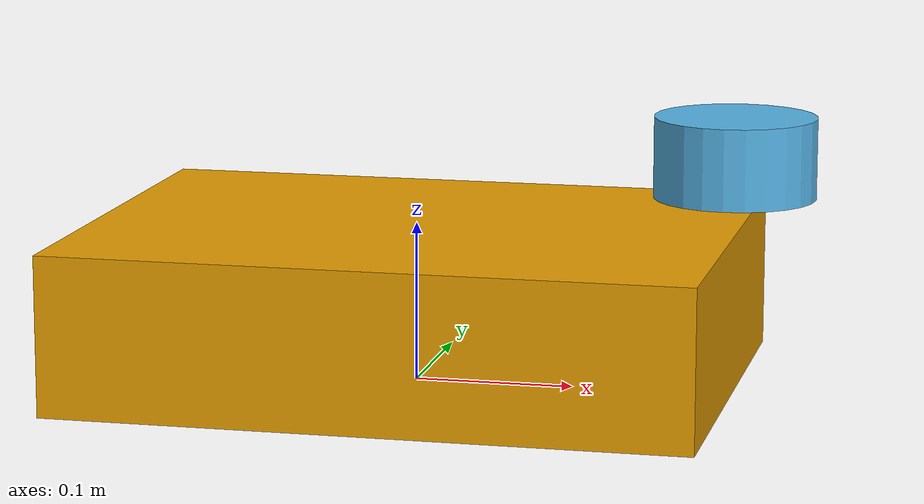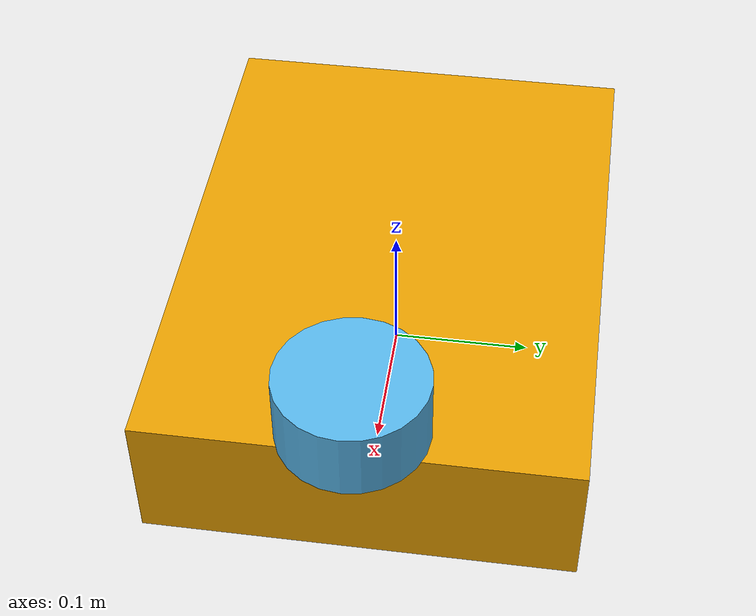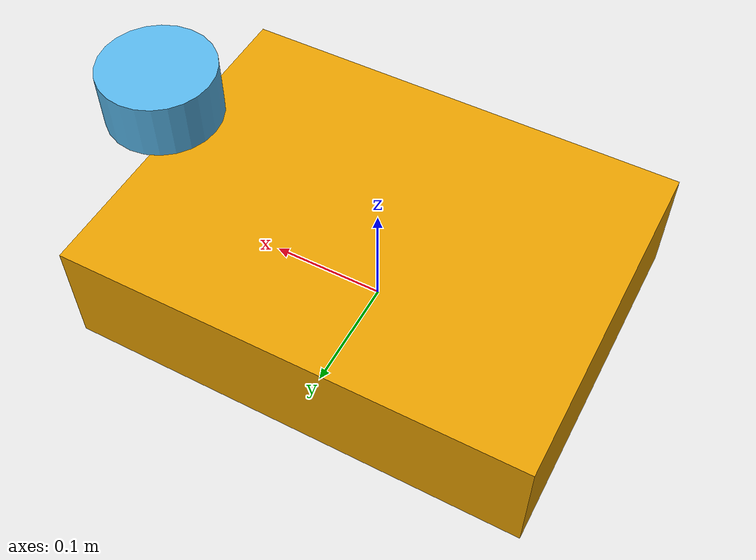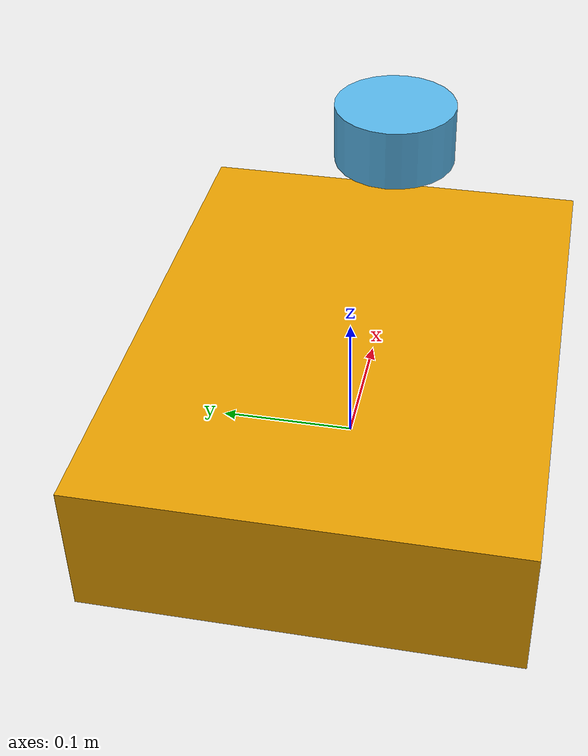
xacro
<?xml version="1.0"?>
<robot name="mercury" xmlns:xacro="http://www.ros.org/wiki/xacro">

  <!-- ================= BASE ================= -->
  <link name="base_link">
    <visual>
      <geometry>
        <box size="0.4 0.3 0.1"/>
      </geometry>
      <origin xyz="0 0 0.05"/>
    </visual>
  </link>

  <!-- ================= LIDAR ================= -->
  <link name="laser_link">
    <visual>
      <geometry>
        <cylinder length="0.05" radius="0.05"/>
      </geometry>
    </visual>
  </link>

  <joint name="laser_joint" type="fixed">
    <parent link="base_link"/>
    <child link="laser_link"/>
    <origin xyz="0.2 0 0.15" rpy="0 0 0"/>
  </joint>

  <!-- ================= REALSENSE CAMERA BODY ================= -->
  <link name="camera_link"/>

  <joint name="camera_mount_joint" type="fixed">
    <parent link="base_link"/>
    <child link="camera_link"/>
    <!-- Adjust these values to your real mounting -->
    <origin xyz="0.15 0 0.12" rpy="0 0 0"/>
  </joint>

  <!-- ================= IMU FRAME ================= -->
  <link name="camera_imu_frame"/>

  <joint name="camera_imu_joint" type="fixed">
    <parent link="camera_link"/>
    <child link="camera_imu_frame"/>
    <origin xyz="0 0 0" rpy="0 0 0"/>
  </joint>

  <!-- ================= IMU OPTICAL FRAME ================= -->
  <!-- Optical frame rotation: X right, Y down, Z forward -->
  <link name="camera_imu_optical_frame"/>

  <joint name="camera_imu_optical_joint" type="fixed">
    <parent link="camera_imu_frame"/>
    <child link="camera_imu_optical_frame"/>
    <!-- Convert from ROS frame to optical frame -->
    <origin xyz="0 0 0" rpy="-1.5708 0 -1.5708"/>
  </joint>

</robot>
